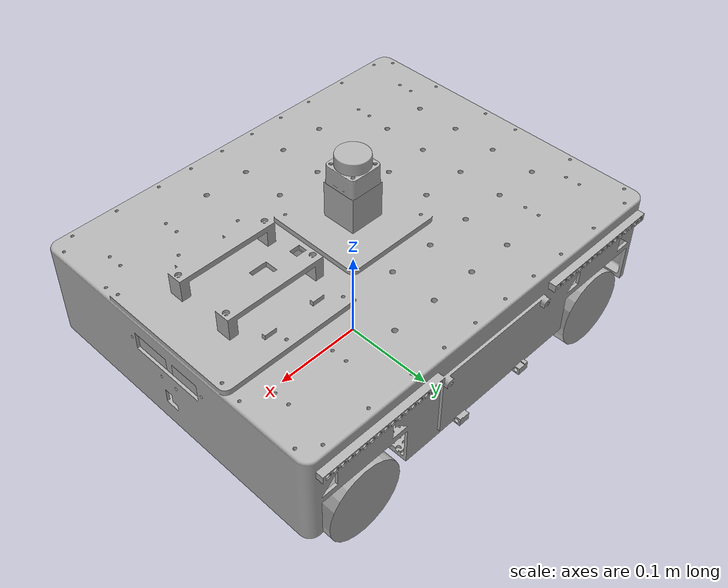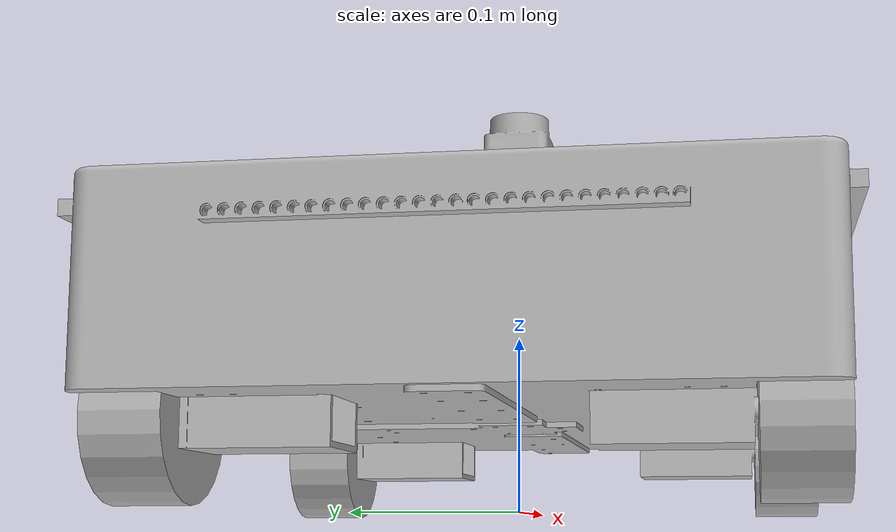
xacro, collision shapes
<?xml version='1.0' encoding='utf-8'?>
<robot xmlns:xacro="http://www.ros.org/wiki/xacro" name="horizon_bot">
  <xacro:arg name="use_arm" default="false"/>
  <xacro:arg name="drive" default="gz"/>
  <xacro:arg name="system" default="diff" />
  <xacro:arg name="controllers_file" default=""/>

  <!--Turning args to property to allow for robotness -->
  <xacro:property name="drive" value="$(arg drive)" />
  <xacro:property name="system" value="$(arg system)"/>

  <!--Include Files-->
  <xacro:include filename="$(find horizon_description)/urdf/materials.xacro" />
  <xacro:include filename="$(find horizon_description)/urdf/base/horizon_mobile_base.xacro" />
  <xacro:include filename="$(find horizon_description)/urdf/wheels/horizon_wheels.xacro" />
  <xacro:include filename="$(find horizon_description)/urdf/sensors/horizon_camera.xacro" />
  <xacro:include filename="$(find horizon_description)/urdf/sensors/horizon_imu.xacro" />
  <xacro:include filename="$(find horizon_description)/urdf/sensors/horizon_lidar.xacro" />
  <xacro:include filename="$(find horizon_description)/urdf/gazebo/horizon_mobile_base.gazebo.xacro" />

  <!--Arm Option-->
  <xacro:if value="$(arg use_arm)">
    <xacro:include filename="$(find horizon_description)/urdf/arm/horizon_arm.xacro" />
  </xacro:if>

  <!--Ros_Control Option-->
  <xacro:if value="${drive == 'ros2_control'}">
    <xacro:include filename="$(find horizon_description)/urdf/ros2_control/horizon_ros2_control.xacro"/>
  </xacro:if>

</robot>

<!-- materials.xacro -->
<robot name="so101_mobile_base" xmlns:xacro="http://www.ros.org/wiki/xacro" >

<material name="silver">
  <color rgba="0.700 0.700 0.700 1.000"/>
</material>

</robot>

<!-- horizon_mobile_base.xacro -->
<robot xmlns:xacro="http://www.ros.org/wiki/xacro">
  <link name="base_footprint" />

  <link name="base_link">
    <inertial>
      <origin xyz="-0.0003553128255081884 -0.01259515577682061 0.04627232782888175" rpy="0 0 0" />
      <mass value="3.9702124117925144" />
      <inertia ixx="0.044619" iyy="0.066132" izz="0.098089" ixy="-0.000379" iyz="-0.00061" ixz="-0.00129" />
    </inertial>
    <visual>
      <origin xyz="0 0 0" rpy="0 0 0" />
      <geometry>
        <mesh filename="file://$(find horizon_description)/meshes/base_link.stl" scale="0.001 0.001 0.001" />
      </geometry>
      <material name="silver" />
    </visual>
    <collision>
      <origin xyz="0 0 0" rpy="0 0 0" />
      <geometry>
        <mesh filename="file://$(find horizon_description)/meshes/base_link.stl" scale="0.001 0.001 0.001" />
      </geometry>
    </collision>
  </link>

  <joint name="base_footprint_joint" type="fixed">
    <origin xyz="0 0 0.0425" rpy="0 0 0" />
    <parent link="base_footprint" />
    <child link="base_link" />
  </joint>

</robot>

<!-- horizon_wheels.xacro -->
<robot xmlns:xacro="http://www.ros.org/wiki/xacro">
  <xacro:property name="wheel_radius" value="0.0425"/>
  <xacro:property name="wheel_length" value="0.04"/>

  <link name="front_left_wheel_link">
    <inertial>
      <origin xyz="2.551340563816673e-08 0.0006253320539596485 -2.5586387187433253e-08" rpy="0 0 0" />
      <mass value="0.1499770678573329" />
      <inertia ixx="8.9e-05" iyy="0.000154" izz="8.9e-05" ixy="0.0" iyz="-0.0" ixz="-0.0" />
    </inertial>
    <visual>
      <origin xyz="-0.16 -0.155 -0.0" rpy="0 0 0" />
      <geometry>
        <mesh filename="file://$(find horizon_description)/meshes/wheel_fl_1.stl" scale="0.001 0.001 0.001" />
      </geometry>
      <material name="silver" />
    </visual>
    <collision>
      <origin xyz="0 0 0" rpy="${pi/2} 0 0" />
      <geometry>
        <cylinder radius="${wheel_radius}" length="${wheel_length}" />
      </geometry>
    </collision>
  </link>

  <joint name="base_front_left_wheel_joint" type="continuous">
    <origin xyz="0.16 0.155 0.0" rpy="0 0 0" />
    <parent link="base_link" />
    <child link="front_left_wheel_link" />
    <axis xyz="0.0 1.0 0.0" />
  </joint>

  <link name="front_right_wheel_link">
    <inertial>
      <origin xyz="3.843054245944444e-07 -0.0006779279390359827 4.2984566024185415e-07" rpy="0 0 0" />
      <mass value="0.14997665166087926" />
      <inertia ixx="8.9e-05" iyy="0.000154" izz="8.9e-05" ixy="-0.0" iyz="-0.0" ixz="0.0" />
    </inertial>
    <visual>
      <origin xyz="-0.16 0.155 -0.0" rpy="0 0 0" />
      <geometry>
        <mesh filename="file://$(find horizon_description)/meshes/wheel_fr_1.stl" scale="0.001 0.001 0.001" />
      </geometry>
      <material name="silver" />
    </visual>
    <collision>
      <origin xyz="0 0 0" rpy="1.570796 0 0" />
      <geometry>
        <cylinder radius="0.0425" length="0.04" />
      </geometry>
    </collision>
  </link>

  <joint name="base_front_right_wheel_joint" type="continuous">
    <origin xyz="0.16 -0.155 0.0" rpy="0 0 0" />
    <parent link="base_link" />
    <child link="front_right_wheel_link" />
    <axis xyz="0.0 1.0 0.0" />
  </joint>

  <link name="rear_left_wheel_link">
    <inertial>
      <origin xyz="-3.837284490715298e-07 0.0006779393073299 4.3892931182474334e-07" rpy="0 0 0" />
      <mass value="0.14997663134221842" />
      <inertia ixx="8.9e-05" iyy="0.000154" izz="8.9e-05" ixy="-0.0" iyz="0.0" ixz="-0.0" />
    </inertial>
    <visual>
      <origin xyz="0.16 -0.155 -0.0" rpy="0 0 0" />
      <geometry>
        <mesh filename="file://$(find horizon_description)/meshes/wheel_rl_1.stl" scale="0.001 0.001 0.001" />
      </geometry>
      <material name="silver" />
    </visual>
    <collision>
      <origin xyz="0 0 0" rpy="1.570796 0 0" />
      <geometry>
        <cylinder radius="0.0425" length="0.04" />
      </geometry>
    </collision>
  </link>

  <joint name="base_rear_left_wheel_joint" type="continuous">
    <origin xyz="-0.16 0.155 0.0" rpy="0 0 0" />
    <parent link="base_link" />
    <child link="rear_left_wheel_link" />
    <axis xyz="0.0 1.0 0.0" />
  </joint>

  <link name="rear_right_wheel_link">
    <inertial>
      <origin xyz="-2.191829839848225e-08 -0.0006253329985821676 -3.474211290147678e-08" rpy="0 0 0" />
      <mass value="0.14997705143711756" />
      <inertia ixx="8.9e-05" iyy="0.000154" izz="8.9e-05" ixy="0.0" iyz="0.0" ixz="-0.0" />
    </inertial>
    <visual>
      <origin xyz="0.16 0.155 -0.0" rpy="0 0 0" />
      <geometry>
        <mesh filename="file://$(find horizon_description)/meshes/wheel_rr_1.stl" scale="0.001 0.001 0.001" />
      </geometry>
      <material name="silver" />
    </visual>
    <collision>
      <origin xyz="0 0 0" rpy="1.570796 0 0" />
      <geometry>
        <cylinder radius="0.0425" length="0.04" />
      </geometry>
    </collision>
  </link>

  <joint name="base_rear_right_wheel_joint" type="continuous">
    <origin xyz="-0.16 -0.155 0.0" rpy="0 0 0" />
    <parent link="base_link" />
    <child link="rear_right_wheel_link" />
    <axis xyz="0.0 1.0 0.0" />
  </joint>
</robot>

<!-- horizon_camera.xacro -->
<robot xmlns:xacro="http://www.ros.org/wiki/xacro">
  <link name="oakd_link">
    <inertial>
      <origin xyz="-0.008325616440255229 0.00019289755549413884 0.00010124999004827717" rpy="0 0 0" />
      <mass value="0.06100178879167756" />
      <inertia ixx="4.8e-05" iyy="6e-06" izz="4.5e-05" ixy="0.0" iyz="0.0" ixz="0.0" />
    </inertial>
    <visual>
      <origin xyz="-0.222 -0.0 -0.084" rpy="0 0 0" />
      <geometry>
        <mesh filename="file://$(find horizon_description)/meshes/oakd_link_1.stl" scale="0.001 0.001 0.001" />
      </geometry>
      <material name="silver" />
    </visual>
    <collision>
      <origin xyz="-0.222 -0.0 -0.084" rpy="0 0 0" />
      <geometry>
        <mesh filename="file://$(find horizon_description)/meshes/oakd_link_1.stl" scale="0.001 0.001 0.001" />
      </geometry>
    </collision>
  </link>
  <link name="camera_link">
    <inertial>
      <origin xyz="-0.003013781377897262 -2.318277353570963e-18 0.003516460553155819" rpy="0 0 0" />
      <mass value="0.003" />
      <inertia ixx="0.0" iyy="0.0" izz="0.0" ixy="0.0" iyz="0.0" ixz="-0.0" />
    </inertial>
    <visual>
      <origin xyz="-0.214225 -0.0 -0.040861" rpy="0 0 0" />
      <geometry>
        <mesh filename="file://$(find horizon_description)/meshes/camera_link_1.stl" scale="0.001 0.001 0.001" />
      </geometry>
      <material name="silver" />
    </visual>
    <collision>
      <origin xyz="-0.214225 -0.0 -0.040861" rpy="0 0 0" />
      <geometry>
        <mesh filename="file://$(find horizon_description)/meshes/camera_link_1.stl" scale="0.001 0.001 0.001" />
      </geometry>
    </collision>
  </link>

  <joint name="oakd_joint" type="fixed">
    <origin xyz="0.222 0.0 0.084" rpy="0 0 0" />
    <parent link="base_link" />
    <child link="oakd_link" />
  </joint>
  <joint name="camera_joint" type="fixed">
    <origin xyz="0.214225 0.0 0.040861" rpy="0 0 0" />
    <parent link="base_link" />
    <child link="camera_link" />
  </joint>

  <link name="picam_frame" />
  <joint name="picam_frame_joint" type="fixed">
    <origin xyz="0 0 0" rpy="0 0.523599 0" />
    <parent link="camera_link" />
    <child link="picam_frame" />
  </joint>
  <link name="picam_optical_frame" />
  <joint name="picam_optical_frame_joint" type="fixed">
    <origin xyz="0 0 0" rpy="-1.5708 0 -1.5708" />
    <parent link="picam_frame" />
    <child link="picam_optical_frame" />
  </joint>
</robot>

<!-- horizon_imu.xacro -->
<robot xmlns:xacro="http://www.ros.org/wiki/xacro">
  <link name="imu_link">
    <inertial>
      <origin xyz="0.0 2.450000000000206e-05 -0.0012999999999999817" rpy="0 0 0" />
      <mass value="0.0025" />
      <inertia ixx="0.0" iyy="0.0" izz="0.0" ixy="0.0" iyz="-0.0" ixz="0.0" />
    </inertial>
    <visual>
      <origin xyz="-0.0 0.00085 -0.1206" rpy="0 0 0" />
      <geometry>
        <mesh filename="file://$(find horizon_description)/meshes/imu_link_1.stl" scale="0.001 0.001 0.001" />
      </geometry>
      <material name="silver" />
    </visual>
    <collision>
      <origin xyz="-0.0 0.00085 -0.1206" rpy="0 0 0" />
      <geometry>
        <mesh filename="file://$(find horizon_description)/meshes/imu_link_1.stl" scale="0.001 0.001 0.001" />
      </geometry>
    </collision>
  </link>

  <joint name="imu_joint" type="fixed">
    <origin xyz="0.0 -0.00085 0.1206" rpy="0 0 0" />
    <parent link="base_link" />
    <child link="imu_link" />
  </joint>
</robot>

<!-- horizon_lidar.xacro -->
<robot xmlns:xacro="http://www.ros.org/wiki/xacro">
  <link name="lidar_link">
    <inertial>
      <origin xyz="9.501500587299368e-05 -1.0980874706253633e-05 -0.0012299309339783293" rpy="0 0 0" />
      <mass value="0.04499999999999963" />
      <inertia ixx="9e-06" iyy="9e-06" izz="9e-06" ixy="0.0" iyz="-0.0" ixz="0.0" />
    </inertial>
    <visual>
      <origin xyz="-0.0 -0.0 -0.1725" rpy="0 0 0" />
      <geometry>
        <mesh filename="file://$(find horizon_description)/meshes/lidar_link_1.stl" scale="0.001 0.001 0.001" />
      </geometry>
      <material name="silver" />
    </visual>
    <collision>
      <origin xyz="-0.0 -0.0 -0.1725" rpy="0 0 0" />
      <geometry>
        <mesh filename="file://$(find horizon_description)/meshes/lidar_link_1.stl" scale="0.001 0.001 0.001" />
      </geometry>
    </collision>
  </link>

  <joint name="lidar_joint" type="fixed">
    <origin xyz="0.0 0.0 0.1725" rpy="0 0 0" />
    <parent link="base_link" />
    <child link="lidar_link" />
  </joint>

  <gazebo reference="lidar_link">
    <sensor name="lidar" type="gpu_lidar">
      <gz_frame_id>lidar_link</gz_frame_id>
      <topic>scan</topic>
      <pose>0 0 0 0 0 0</pose>
      <update_rate>10</update_rate>
      <always_on>true</always_on>
      <visualize>true</visualize>
      <lidar>
        <scan>
          <horizontal>
            <samples>360</samples>
            <min_angle>${-pi}</min_angle>
            <max_angle>${pi}</max_angle>
          </horizontal>
        </scan>
        <range>
          <min>0.35</min>
          <max>15.0</max>
        </range>
      </lidar>
    </sensor>
  </gazebo>
</robot>

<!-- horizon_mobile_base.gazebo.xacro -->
<robot name="so101_mobile_base" xmlns:xacro="http://www.ros.org/wiki/xacro" xmlns:gz="http://gazebosim.org/schema">

<xacro:property name="body_color" value="Gazebo/Silver" />

<gazebo reference="base_link">
  <material>${body_color}</material>
  <mu1>0.2</mu1>
  <mu2>0.2</mu2>
  <self_collide>true</self_collide>
  <gravity>true</gravity>
</gazebo>

<gazebo reference="front_left_wheel_link">
  <material>${body_color}</material>
  <xacro:if value="${system == 'diff'}">
    <mu1>0.2</mu1>
    <mu2>0.2</mu2>
  </xacro:if>
  <xacro:if value="${system =='mecanum'}">
    <collision>
      <surface>
        <friction>
          <ode>
            <mu>1.0</mu>
            <mu2>0.0</mu2>
            <fdir1 gz:expressed_in="base_footprint">1 -1 0</fdir1>
          </ode>
        </friction>
      </surface>
    </collision>
  </xacro:if>
  <self_collide>true</self_collide>
</gazebo>

<gazebo reference="front_right_wheel_link">
  <material>${body_color}</material>
  <xacro:if value="${system == 'diff'}">
    <mu1>0.2</mu1>
    <mu2>0.2</mu2>
  </xacro:if>
  <xacro:if value="${system == 'mecanum'}">
    <collision>
      <surface>
        <friction>
          <ode>
            <mu>1.0</mu>
            <mu2>0.0</mu2>
            <fdir1 gz:expressed_in="base_footprint">1 1 0</fdir1>
          </ode>
        </friction>
      </surface>
    </collision>
  </xacro:if>
  <self_collide>true</self_collide>
</gazebo>

<gazebo reference="rear_left_wheel_link">
  <material>${body_color}</material>
  <xacro:if value="${system == 'diff'}">
    <mu1>0.2</mu1>
    <mu2>0.2</mu2>
  </xacro:if>
  <xacro:if value="${system == 'mecanum'}">
    <collision>
      <surface>
        <friction>
          <ode>
            <mu>1.0</mu>
            <mu2>0.0</mu2>
            <fdir1 gz:expressed_in="base_footprint">1 1 0</fdir1>
          </ode>
        </friction>
      </surface>
    </collision>
  </xacro:if>
  <self_collide>true</self_collide>
</gazebo>

<gazebo reference="rear_right_wheel_link">
  <material>${body_color}</material>
  <xacro:if value="${system == 'diff'}">
    <mu1>0.2</mu1>
    <mu2>0.2</mu2>
  </xacro:if>
  <xacro:if value="${system == 'mecanum'}">
    <collision>
      <surface>
        <friction>
          <ode>
            <mu>1.0</mu>
            <mu2>0.0</mu2>
            <fdir1 gz:expressed_in="base_footprint">1 -1 0</fdir1>
          </ode>
        </friction>
      </surface>
    </collision>
  </xacro:if>
  <self_collide>true</self_collide>
</gazebo>

<gazebo reference="lidar_link">
  <material>${body_color}</material>
  <mu1>0.2</mu1>
  <mu2>0.2</mu2>
  <self_collide>true</self_collide>
</gazebo>

<gazebo reference="imu_link">
  <material>${body_color}</material>
  <mu1>0.2</mu1>
  <mu2>0.2</mu2>
  <self_collide>true</self_collide>
</gazebo>

<gazebo reference="oakd_link">
  <material>${body_color}</material>
  <mu1>0.2</mu1>
  <mu2>0.2</mu2>
  <self_collide>true</self_collide>
</gazebo>

<gazebo reference="camera_link">
  <material>${body_color}</material>
  <mu1>0.2</mu1>
  <mu2>0.2</mu2>
  <self_collide>true</self_collide>
</gazebo>

<gazebo reference="so101_base_link">
  <material>${body_color}</material>
  <mu1>0.2</mu1>
  <mu2>0.2</mu2>
  <self_collide>true</self_collide>
</gazebo>

<gazebo reference="shoulder_link">
  <material>${body_color}</material>
  <mu1>0.2</mu1>
  <mu2>0.2</mu2>
  <self_collide>true</self_collide>
</gazebo>

<gazebo reference="upper_arm_link">
  <material>${body_color}</material>
  <mu1>0.2</mu1>
  <mu2>0.2</mu2>
  <self_collide>true</self_collide>
</gazebo>

<gazebo reference="lower_arm_link">
  <material>${body_color}</material>
  <mu1>0.2</mu1>
  <mu2>0.2</mu2>
  <self_collide>true</self_collide>
</gazebo>

<gazebo reference="wrist_link">
  <material>${body_color}</material>
  <mu1>0.2</mu1>
  <mu2>0.2</mu2>
  <self_collide>true</self_collide>
</gazebo>

<gazebo reference="gripper_link">
  <material>${body_color}</material>
  <mu1>0.2</mu1>
  <mu2>0.2</mu2>
  <self_collide>true</self_collide>
</gazebo>

<gazebo reference="moving_jaw_so101_v1_link">
  <material>${body_color}</material>
  <mu1>0.2</mu1>
  <mu2>0.2</mu2>
  <self_collide>true</self_collide>
</gazebo>

<!-- Control -->
<!-- Old Gazebo ros2 control plugin -->

  <!--Gazebo's built-in diff drive system-->
  <xacro:if value="${drive == 'gz'}">
    <gazebo>
      <plugin filename="gz-sim-diff-drive-system" name="gz::sim::systems::DiffDrive">
        <left_joint>base_front_left_wheel_joint</left_joint>
        <right_joint>base_front_right_wheel_joint</right_joint>
        <left_joint>base_rear_left_wheel_joint</left_joint>
        <right_joint>base_rear_right_wheel_joint</right_joint>
        <wheel_separation>0.31</wheel_separation>
        <wheel_radius>${wheel_radius}</wheel_radius>
        <topic>model/horizon_bot/cmd_vel</topic>
        <frame_id>odom</frame_id>
        <child_frame_id>base_footprint</child_frame_id>
        <odom_topic>odom</odom_topic>
        <tf_topic>tf</tf_topic>
      </plugin>
      <plugin filename="gz-sim-joint-state-publisher-system" name="gz::sim::systems::JointStatePublisher">
        <topic>joint_states</topic>
      </plugin>
    </gazebo>
  </xacro:if>
</robot>
